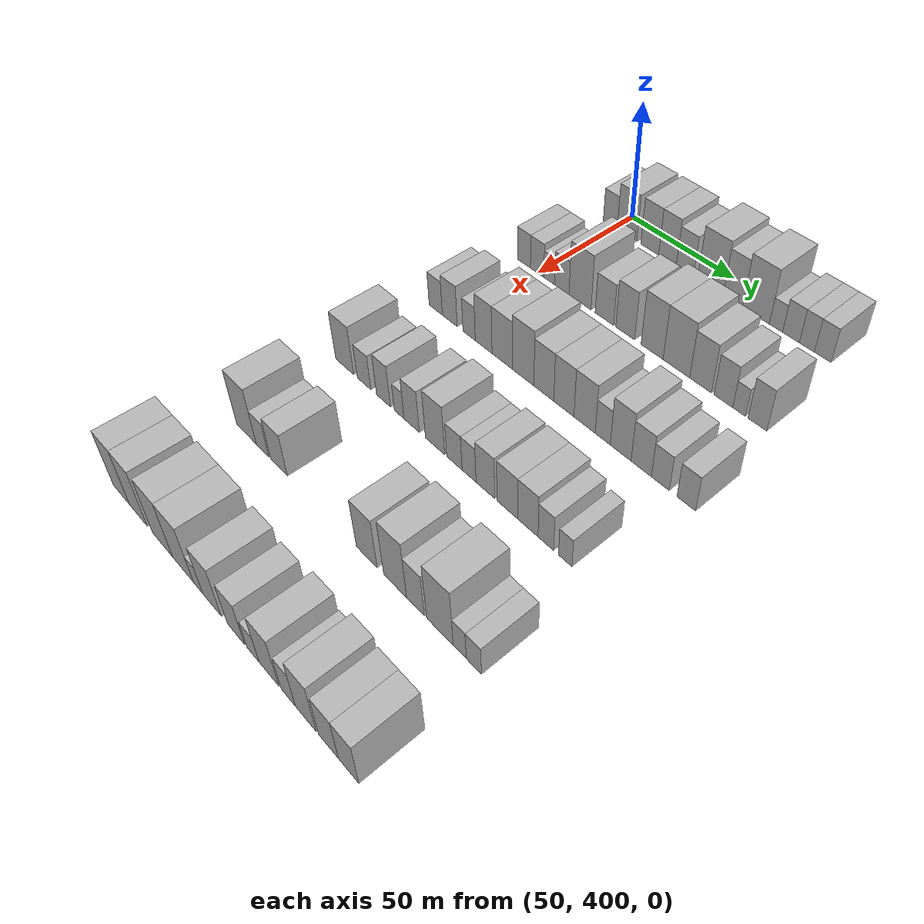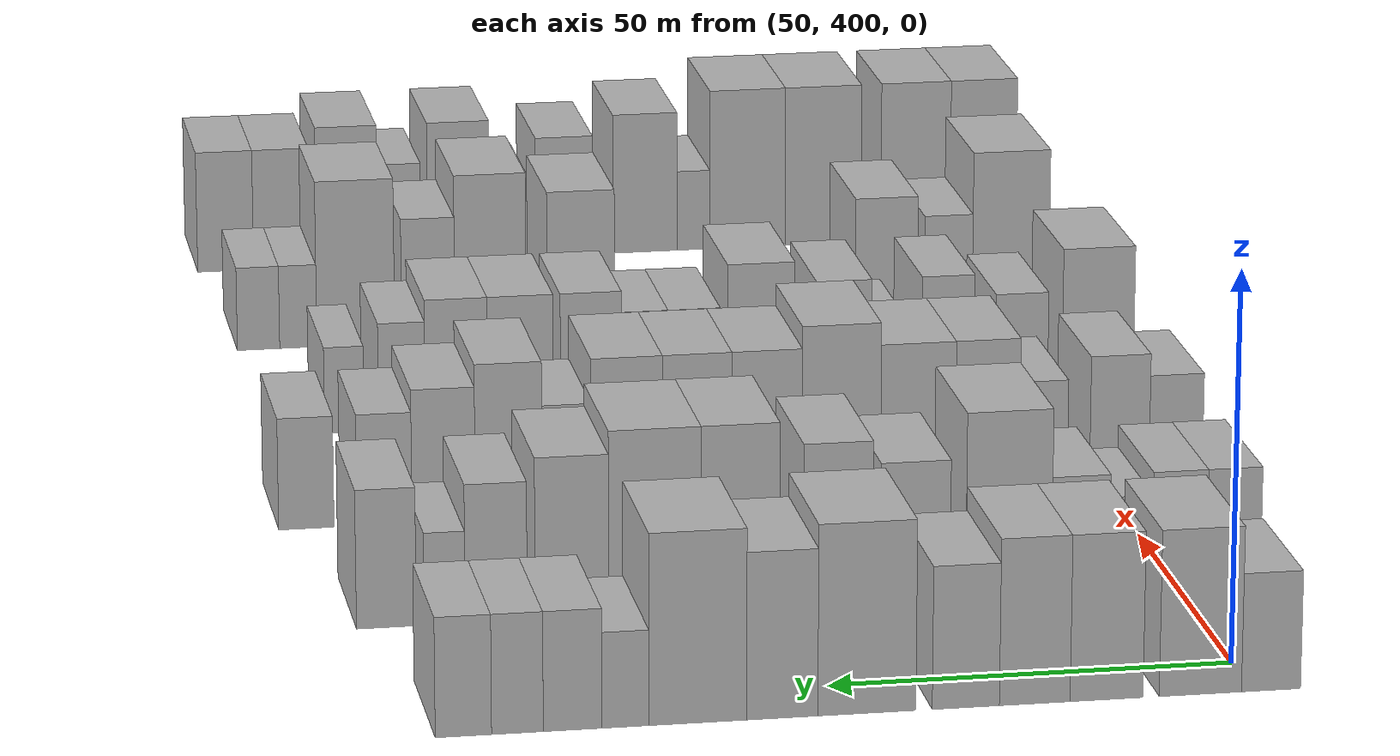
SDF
<sdf version="1.6">
 <world name="default">
  <model name="building_115">
   <static>1</static>
   <pose>50.0000 397.6281 0 0.000000 0.000000 0.000000</pose>
   <link name="link">
    <pose>0 0 7.50 0 0 0</pose>
    <collision name="collision"><geometry><box><size>20.0000 7.2996 15.0000</size></box></geometry></collision>
    <visual name="visual">
     <cast_shadows>0</cast_shadows>
     <geometry><box><size>20.0000 7.2996 15.0000</size></box></geometry>
     <material>
      <script>
       <uri>model://HANNAS_wall/materials/scripts</uri>
       <uri>model://HANNAS_wall/materials/textures</uri>
       <name>vrc/HANNAS_wall</name>
      </script>
     </material>
    </visual>
   </link>
  </model>
  <model name="building_116">
   <static>1</static>
   <pose>50.0000 406.3432 0 0.000000 0.000000 0.000000</pose>
   <link name="link">
    <pose>0 0 10.50 0 0 0</pose>
    <collision name="collision"><geometry><box><size>20.0000 10.1307 21.0000</size></box></geometry></collision>
    <visual name="visual">
     <cast_shadows>0</cast_shadows>
     <geometry><box><size>20.0000 10.1307 21.0000</size></box></geometry>
     <material>
      <script>
       <uri>model://HANNAS_wall/materials/scripts</uri>
       <uri>model://HANNAS_wall/materials/textures</uri>
       <name>vrc/HANNAS_wall</name>
      </script>
     </material>
    </visual>
   </link>
  </model>
  <model name="building_117">
   <static>1</static>
   <pose>50.0000 417.8792 0 0.000000 0.000000 0.000000</pose>
   <link name="link">
    <pose>0 0 10.50 0 0 0</pose>
    <collision name="collision"><geometry><box><size>20.0000 8.9412 21.0000</size></box></geometry></collision>
    <visual name="visual">
     <cast_shadows>0</cast_shadows>
     <geometry><box><size>20.0000 8.9412 21.0000</size></box></geometry>
     <material>
      <script>
       <uri>model://HANNAS_wall/materials/scripts</uri>
       <uri>model://HANNAS_wall/materials/textures</uri>
       <name>vrc/HANNAS_wall</name>
      </script>
     </material>
    </visual>
   </link>
  </model>
  <model name="building_118">
   <static>1</static>
   <pose>50.0000 426.6758 0 0.000000 0.000000 0.000000</pose>
   <link name="link">
    <pose>0 0 10.50 0 0 0</pose>
    <collision name="collision"><geometry><box><size>20.0000 8.6520 21.0000</size></box></geometry></collision>
    <visual name="visual">
     <cast_shadows>0</cast_shadows>
     <geometry><box><size>20.0000 8.6520 21.0000</size></box></geometry>
     <material>
      <script>
       <uri>model://HANNAS_wall/materials/scripts</uri>
       <uri>model://HANNAS_wall/materials/textures</uri>
       <name>vrc/HANNAS_wall</name>
      </script>
     </material>
    </visual>
   </link>
  </model>
  <model name="building_119">
   <static>1</static>
   <pose>50.0000 435.0925 0 0.000000 0.000000 0.000000</pose>
   <link name="link">
    <pose>0 0 9.00 0 0 0</pose>
    <collision name="collision"><geometry><box><size>20.0000 8.1815 18.0000</size></box></geometry></collision>
    <visual name="visual">
     <cast_shadows>0</cast_shadows>
     <geometry><box><size>20.0000 8.1815 18.0000</size></box></geometry>
     <material>
      <script>
       <uri>model://HANNAS_wall/materials/scripts</uri>
       <uri>model://HANNAS_wall/materials/textures</uri>
       <name>vrc/HANNAS_wall</name>
      </script>
     </material>
    </visual>
   </link>
  </model>
  <model name="building_120">
   <static>1</static>
   <pose>50.0000 447.1263 0 0.000000 0.000000 0.000000</pose>
   <link name="link">
    <pose>0 0 12.00 0 0 0</pose>
    <collision name="collision"><geometry><box><size>20.0000 11.8861 24.0000</size></box></geometry></collision>
    <visual name="visual">
     <cast_shadows>0</cast_shadows>
     <geometry><box><size>20.0000 11.8861 24.0000</size></box></geometry>
     <material>
      <script>
       <uri>model://HANNAS_wall/materials/scripts</uri>
       <uri>model://HANNAS_wall/materials/textures</uri>
       <name>vrc/HANNAS_wall</name>
      </script>
     </material>
    </visual>
   </link>
  </model>
  <model name="building_121">
   <static>1</static>
   <pose>50.0000 457.3688 0 0.000000 0.000000 0.000000</pose>
   <link name="link">
    <pose>0 0 10.50 0 0 0</pose>
    <collision name="collision"><geometry><box><size>20.0000 8.5988 21.0000</size></box></geometry></collision>
    <visual name="visual">
     <cast_shadows>0</cast_shadows>
     <geometry><box><size>20.0000 8.5988 21.0000</size></box></geometry>
     <material>
      <script>
       <uri>model://HANNAS_wall/materials/scripts</uri>
       <uri>model://HANNAS_wall/materials/textures</uri>
       <name>vrc/HANNAS_wall</name>
      </script>
     </material>
    </visual>
   </link>
  </model>
  <model name="building_122">
   <static>1</static>
   <pose>50.0000 467.5502 0 0.000000 0.000000 0.000000</pose>
   <link name="link">
    <pose>0 0 12.00 0 0 0</pose>
    <collision name="collision"><geometry><box><size>20.0000 11.7640 24.0000</size></box></geometry></collision>
    <visual name="visual">
     <cast_shadows>0</cast_shadows>
     <geometry><box><size>20.0000 11.7640 24.0000</size></box></geometry>
     <material>
      <script>
       <uri>model://HANNAS_wall/materials/scripts</uri>
       <uri>model://HANNAS_wall/materials/textures</uri>
       <name>vrc/HANNAS_wall</name>
      </script>
     </material>
    </visual>
   </link>
  </model>
  <model name="building_123">
   <static>1</static>
   <pose>50.0000 476.2482 0 0.000000 0.000000 0.000000</pose>
   <link name="link">
    <pose>0 0 6.00 0 0 0</pose>
    <collision name="collision"><geometry><box><size>20.0000 5.6320 12.0000</size></box></geometry></collision>
    <visual name="visual">
     <cast_shadows>0</cast_shadows>
     <geometry><box><size>20.0000 5.6320 12.0000</size></box></geometry>
     <material>
      <script>
       <uri>model://HANNAS_wall/materials/scripts</uri>
       <uri>model://HANNAS_wall/materials/textures</uri>
       <name>vrc/HANNAS_wall</name>
      </script>
     </material>
    </visual>
   </link>
  </model>
  <model name="building_124">
   <static>1</static>
   <pose>50.0000 482.5746 0 0.000000 0.000000 0.000000</pose>
   <link name="link">
    <pose>0 0 7.50 0 0 0</pose>
    <collision name="collision"><geometry><box><size>20.0000 7.0209 15.0000</size></box></geometry></collision>
    <visual name="visual">
     <cast_shadows>0</cast_shadows>
     <geometry><box><size>20.0000 7.0209 15.0000</size></box></geometry>
     <material>
      <script>
       <uri>model://HANNAS_wall/materials/scripts</uri>
       <uri>model://HANNAS_wall/materials/textures</uri>
       <name>vrc/HANNAS_wall</name>
      </script>
     </material>
    </visual>
   </link>
  </model>
  <model name="building_125">
   <static>1</static>
   <pose>50.0000 489.1726 0 0.000000 0.000000 0.000000</pose>
   <link name="link">
    <pose>0 0 7.50 0 0 0</pose>
    <collision name="collision"><geometry><box><size>20.0000 6.1750 15.0000</size></box></geometry></collision>
    <visual name="visual">
     <cast_shadows>0</cast_shadows>
     <geometry><box><size>20.0000 6.1750 15.0000</size></box></geometry>
     <material>
      <script>
       <uri>model://HANNAS_wall/materials/scripts</uri>
       <uri>model://HANNAS_wall/materials/textures</uri>
       <name>vrc/HANNAS_wall</name>
      </script>
     </material>
    </visual>
   </link>
  </model>
  <model name="building_126">
   <static>1</static>
   <pose>50.0000 495.6147 0 0.000000 0.000000 0.000000</pose>
   <link name="link">
    <pose>0 0 7.50 0 0 0</pose>
    <collision name="collision"><geometry><box><size>20.0000 6.7092 15.0000</size></box></geometry></collision>
    <visual name="visual">
     <cast_shadows>0</cast_shadows>
     <geometry><box><size>20.0000 6.7092 15.0000</size></box></geometry>
     <material>
      <script>
       <uri>model://HANNAS_wall/materials/scripts</uri>
       <uri>model://HANNAS_wall/materials/textures</uri>
       <name>vrc/HANNAS_wall</name>
      </script>
     </material>
    </visual>
   </link>
  </model>
  <model name="building_245">
   <static>1</static>
   <pose>90.0000 392.4296 0 0.000000 0.000000 0.000000</pose>
   <link name="link">
    <pose>0 0 7.50 0 0 0</pose>
    <collision name="collision"><geometry><box><size>20.0000 6.9633 15.0000</size></box></geometry></collision>
    <visual name="visual">
     <cast_shadows>0</cast_shadows>
     <geometry><box><size>20.0000 6.9633 15.0000</size></box></geometry>
     <material>
      <script>
       <uri>model://HANNAS_wall/materials/scripts</uri>
       <uri>model://HANNAS_wall/materials/textures</uri>
       <name>vrc/HANNAS_wall</name>
      </script>
     </material>
    </visual>
   </link>
  </model>
  <model name="building_246">
   <static>1</static>
   <pose>90.0000 399.4399 0 0.000000 0.000000 0.000000</pose>
   <link name="link">
    <pose>0 0 7.50 0 0 0</pose>
    <collision name="collision"><geometry><box><size>20.0000 7.0574 15.0000</size></box></geometry></collision>
    <visual name="visual">
     <cast_shadows>0</cast_shadows>
     <geometry><box><size>20.0000 7.0574 15.0000</size></box></geometry>
     <material>
      <script>
       <uri>model://HANNAS_wall/materials/scripts</uri>
       <uri>model://HANNAS_wall/materials/textures</uri>
       <name>vrc/HANNAS_wall</name>
      </script>
     </material>
    </visual>
   </link>
  </model>
  <model name="building_247">
   <static>1</static>
   <pose>90.0000 405.7110 0 0.000000 0.000000 0.000000</pose>
   <link name="link">
    <pose>0 0 6.00 0 0 0</pose>
    <collision name="collision"><geometry><box><size>20.0000 5.4847 12.0000</size></box></geometry></collision>
    <visual name="visual">
     <cast_shadows>0</cast_shadows>
     <geometry><box><size>20.0000 5.4847 12.0000</size></box></geometry>
     <material>
      <script>
       <uri>model://HANNAS_wall/materials/scripts</uri>
       <uri>model://HANNAS_wall/materials/textures</uri>
       <name>vrc/HANNAS_wall</name>
      </script>
     </material>
    </visual>
   </link>
  </model>
  <model name="building_248">
   <static>1</static>
   <pose>90.0000 412.1818 0 0.000000 0.000000 0.000000</pose>
   <link name="link">
    <pose>0 0 7.50 0 0 0</pose>
    <collision name="collision"><geometry><box><size>20.0000 7.4568 15.0000</size></box></geometry></collision>
    <visual name="visual">
     <cast_shadows>0</cast_shadows>
     <geometry><box><size>20.0000 7.4568 15.0000</size></box></geometry>
     <material>
      <script>
       <uri>model://HANNAS_wall/materials/scripts</uri>
       <uri>model://HANNAS_wall/materials/textures</uri>
       <name>vrc/HANNAS_wall</name>
      </script>
     </material>
    </visual>
   </link>
  </model>
  <model name="building_249">
   <static>1</static>
   <pose>90.0000 421.3964 0 0.000000 0.000000 0.000000</pose>
   <link name="link">
    <pose>0 0 12.00 0 0 0</pose>
    <collision name="collision"><geometry><box><size>20.0000 10.9725 24.0000</size></box></geometry></collision>
    <visual name="visual">
     <cast_shadows>0</cast_shadows>
     <geometry><box><size>20.0000 10.9725 24.0000</size></box></geometry>
     <material>
      <script>
       <uri>model://HANNAS_wall/materials/scripts</uri>
       <uri>model://HANNAS_wall/materials/textures</uri>
       <name>vrc/HANNAS_wall</name>
      </script>
     </material>
    </visual>
   </link>
  </model>
  <model name="building_250">
   <static>1</static>
   <pose>90.0000 433.3153 0 0.000000 0.000000 0.000000</pose>
   <link name="link">
    <pose>0 0 9.00 0 0 0</pose>
    <collision name="collision"><geometry><box><size>20.0000 8.8652 18.0000</size></box></geometry></collision>
    <visual name="visual">
     <cast_shadows>0</cast_shadows>
     <geometry><box><size>20.0000 8.8652 18.0000</size></box></geometry>
     <material>
      <script>
       <uri>model://HANNAS_wall/materials/scripts</uri>
       <uri>model://HANNAS_wall/materials/textures</uri>
       <name>vrc/HANNAS_wall</name>
      </script>
     </material>
    </visual>
   </link>
  </model>
  <model name="building_251">
   <static>1</static>
   <pose>90.0000 443.1510 0 0.000000 0.000000 0.000000</pose>
   <link name="link">
    <pose>0 0 10.50 0 0 0</pose>
    <collision name="collision"><geometry><box><size>20.0000 8.8062 21.0000</size></box></geometry></collision>
    <visual name="visual">
     <cast_shadows>0</cast_shadows>
     <geometry><box><size>20.0000 8.8062 21.0000</size></box></geometry>
     <material>
      <script>
       <uri>model://HANNAS_wall/materials/scripts</uri>
       <uri>model://HANNAS_wall/materials/textures</uri>
       <name>vrc/HANNAS_wall</name>
      </script>
     </material>
    </visual>
   </link>
  </model>
  <model name="building_252">
   <static>1</static>
   <pose>90.0000 455.5092 0 0.000000 0.000000 0.000000</pose>
   <link name="link">
    <pose>0 0 12.00 0 0 0</pose>
    <collision name="collision"><geometry><box><size>20.0000 9.9103 24.0000</size></box></geometry></collision>
    <visual name="visual">
     <cast_shadows>0</cast_shadows>
     <geometry><box><size>20.0000 9.9103 24.0000</size></box></geometry>
     <material>
      <script>
       <uri>model://HANNAS_wall/materials/scripts</uri>
       <uri>model://HANNAS_wall/materials/textures</uri>
       <name>vrc/HANNAS_wall</name>
      </script>
     </material>
    </visual>
   </link>
  </model>
  <model name="building_253">
   <static>1</static>
   <pose>90.0000 466.2756 0 0.000000 0.000000 0.000000</pose>
   <link name="link">
    <pose>0 0 12.00 0 0 0</pose>
    <collision name="collision"><geometry><box><size>20.0000 11.6225 24.0000</size></box></geometry></collision>
    <visual name="visual">
     <cast_shadows>0</cast_shadows>
     <geometry><box><size>20.0000 11.6225 24.0000</size></box></geometry>
     <material>
      <script>
       <uri>model://HANNAS_wall/materials/scripts</uri>
       <uri>model://HANNAS_wall/materials/textures</uri>
       <name>vrc/HANNAS_wall</name>
      </script>
     </material>
    </visual>
   </link>
  </model>
  <model name="building_254">
   <static>1</static>
   <pose>90.0000 476.6976 0 0.000000 0.000000 0.000000</pose>
   <link name="link">
    <pose>0 0 10.50 0 0 0</pose>
    <collision name="collision"><geometry><box><size>20.0000 9.2214 21.0000</size></box></geometry></collision>
    <visual name="visual">
     <cast_shadows>0</cast_shadows>
     <geometry><box><size>20.0000 9.2214 21.0000</size></box></geometry>
     <material>
      <script>
       <uri>model://HANNAS_wall/materials/scripts</uri>
       <uri>model://HANNAS_wall/materials/textures</uri>
       <name>vrc/HANNAS_wall</name>
      </script>
     </material>
    </visual>
   </link>
  </model>
  <model name="building_255">
   <static>1</static>
   <pose>90.0000 486.1868 0 0.000000 0.000000 0.000000</pose>
   <link name="link">
    <pose>0 0 9.00 0 0 0</pose>
    <collision name="collision"><geometry><box><size>20.0000 7.7570 18.0000</size></box></geometry></collision>
    <visual name="visual">
     <cast_shadows>0</cast_shadows>
     <geometry><box><size>20.0000 7.7570 18.0000</size></box></geometry>
     <material>
      <script>
       <uri>model://HANNAS_wall/materials/scripts</uri>
       <uri>model://HANNAS_wall/materials/textures</uri>
       <name>vrc/HANNAS_wall</name>
      </script>
     </material>
    </visual>
   </link>
  </model>
  <model name="building_256">
   <static>1</static>
   <pose>90.0000 492.6128 0 0.000000 0.000000 0.000000</pose>
   <link name="link">
    <pose>0 0 6.00 0 0 0</pose>
    <collision name="collision"><geometry><box><size>20.0000 5.0952 12.0000</size></box></geometry></collision>
    <visual name="visual">
     <cast_shadows>0</cast_shadows>
     <geometry><box><size>20.0000 5.0952 12.0000</size></box></geometry>
     <material>
      <script>
       <uri>model://HANNAS_wall/materials/scripts</uri>
       <uri>model://HANNAS_wall/materials/textures</uri>
       <name>vrc/HANNAS_wall</name>
      </script>
     </material>
    </visual>
   </link>
  </model>
  <model name="building_257">
   <static>1</static>
   <pose>90.0000 499.8841 0 0.000000 0.000000 0.000000</pose>
   <link name="link">
    <pose>0 0 9.00 0 0 0</pose>
    <collision name="collision"><geometry><box><size>20.0000 7.4475 18.0000</size></box></geometry></collision>
    <visual name="visual">
     <cast_shadows>0</cast_shadows>
     <geometry><box><size>20.0000 7.4475 18.0000</size></box></geometry>
     <material>
      <script>
       <uri>model://HANNAS_wall/materials/scripts</uri>
       <uri>model://HANNAS_wall/materials/textures</uri>
       <name>vrc/HANNAS_wall</name>
      </script>
     </material>
    </visual>
   </link>
  </model>
  <model name="building_393">
   <static>1</static>
   <pose>130.0000 390.4270 0 0.000000 0.000000 0.000000</pose>
   <link name="link">
    <pose>0 0 7.50 0 0 0</pose>
    <collision name="collision"><geometry><box><size>20.0000 7.2090 15.0000</size></box></geometry></collision>
    <visual name="visual">
     <cast_shadows>0</cast_shadows>
     <geometry><box><size>20.0000 7.2090 15.0000</size></box></geometry>
     <material>
      <script>
       <uri>model://HANNAS_wall/materials/scripts</uri>
       <uri>model://HANNAS_wall/materials/textures</uri>
       <name>vrc/HANNAS_wall</name>
      </script>
     </material>
    </visual>
   </link>
  </model>
  <model name="building_394">
   <static>1</static>
   <pose>130.0000 398.0259 0 0.000000 0.000000 0.000000</pose>
   <link name="link">
    <pose>0 0 9.00 0 0 0</pose>
    <collision name="collision"><geometry><box><size>20.0000 7.9886 18.0000</size></box></geometry></collision>
    <visual name="visual">
     <cast_shadows>0</cast_shadows>
     <geometry><box><size>20.0000 7.9886 18.0000</size></box></geometry>
     <material>
      <script>
       <uri>model://HANNAS_wall/materials/scripts</uri>
       <uri>model://HANNAS_wall/materials/textures</uri>
       <name>vrc/HANNAS_wall</name>
      </script>
     </material>
    </visual>
   </link>
  </model>
  <model name="building_395">
   <static>1</static>
   <pose>130.0000 408.2379 0 0.000000 0.000000 0.000000</pose>
   <link name="link">
    <pose>0 0 7.50 0 0 0</pose>
    <collision name="collision"><geometry><box><size>20.0000 6.4355 15.0000</size></box></geometry></collision>
    <visual name="visual">
     <cast_shadows>0</cast_shadows>
     <geometry><box><size>20.0000 6.4355 15.0000</size></box></geometry>
     <material>
      <script>
       <uri>model://HANNAS_wall/materials/scripts</uri>
       <uri>model://HANNAS_wall/materials/textures</uri>
       <name>vrc/HANNAS_wall</name>
      </script>
     </material>
    </visual>
   </link>
  </model>
  <model name="building_396">
   <static>1</static>
   <pose>130.0000 415.7455 0 0.000000 0.000000 0.000000</pose>
   <link name="link">
    <pose>0 0 10.50 0 0 0</pose>
    <collision name="collision"><geometry><box><size>20.0000 8.5798 21.0000</size></box></geometry></collision>
    <visual name="visual">
     <cast_shadows>0</cast_shadows>
     <geometry><box><size>20.0000 8.5798 21.0000</size></box></geometry>
     <material>
      <script>
       <uri>model://HANNAS_wall/materials/scripts</uri>
       <uri>model://HANNAS_wall/materials/textures</uri>
       <name>vrc/HANNAS_wall</name>
      </script>
     </material>
    </visual>
   </link>
  </model>
  <model name="building_397">
   <static>1</static>
   <pose>130.0000 425.0184 0 0.000000 0.000000 0.000000</pose>
   <link name="link">
    <pose>0 0 10.50 0 0 0</pose>
    <collision name="collision"><geometry><box><size>20.0000 9.9659 21.0000</size></box></geometry></collision>
    <visual name="visual">
     <cast_shadows>0</cast_shadows>
     <geometry><box><size>20.0000 9.9659 21.0000</size></box></geometry>
     <material>
      <script>
       <uri>model://HANNAS_wall/materials/scripts</uri>
       <uri>model://HANNAS_wall/materials/textures</uri>
       <name>vrc/HANNAS_wall</name>
      </script>
     </material>
    </visual>
   </link>
  </model>
  <model name="building_398">
   <static>1</static>
   <pose>130.0000 435.2147 0 0.000000 0.000000 0.000000</pose>
   <link name="link">
    <pose>0 0 12.00 0 0 0</pose>
    <collision name="collision"><geometry><box><size>20.0000 10.4267 24.0000</size></box></geometry></collision>
    <visual name="visual">
     <cast_shadows>0</cast_shadows>
     <geometry><box><size>20.0000 10.4267 24.0000</size></box></geometry>
     <material>
      <script>
       <uri>model://HANNAS_wall/materials/scripts</uri>
       <uri>model://HANNAS_wall/materials/textures</uri>
       <name>vrc/HANNAS_wall</name>
      </script>
     </material>
    </visual>
   </link>
  </model>
  <model name="building_399">
   <static>1</static>
   <pose>130.0000 445.0683 0 0.000000 0.000000 0.000000</pose>
   <link name="link">
    <pose>0 0 10.50 0 0 0</pose>
    <collision name="collision"><geometry><box><size>20.0000 9.2804 21.0000</size></box></geometry></collision>
    <visual name="visual">
     <cast_shadows>0</cast_shadows>
     <geometry><box><size>20.0000 9.2804 21.0000</size></box></geometry>
     <material>
      <script>
       <uri>model://HANNAS_wall/materials/scripts</uri>
       <uri>model://HANNAS_wall/materials/textures</uri>
       <name>vrc/HANNAS_wall</name>
      </script>
     </material>
    </visual>
   </link>
  </model>
  <model name="building_400">
   <static>1</static>
   <pose>130.0000 454.2772 0 0.000000 0.000000 0.000000</pose>
   <link name="link">
    <pose>0 0 10.50 0 0 0</pose>
    <collision name="collision"><geometry><box><size>20.0000 9.1374 21.0000</size></box></geometry></collision>
    <visual name="visual">
     <cast_shadows>0</cast_shadows>
     <geometry><box><size>20.0000 9.1374 21.0000</size></box></geometry>
     <material>
      <script>
       <uri>model://HANNAS_wall/materials/scripts</uri>
       <uri>model://HANNAS_wall/materials/textures</uri>
       <name>vrc/HANNAS_wall</name>
      </script>
     </material>
    </visual>
   </link>
  </model>
  <model name="building_401">
   <static>1</static>
   <pose>130.0000 463.5213 0 0.000000 0.000000 0.000000</pose>
   <link name="link">
    <pose>0 0 10.50 0 0 0</pose>
    <collision name="collision"><geometry><box><size>20.0000 9.3508 21.0000</size></box></geometry></collision>
    <visual name="visual">
     <cast_shadows>0</cast_shadows>
     <geometry><box><size>20.0000 9.3508 21.0000</size></box></geometry>
     <material>
      <script>
       <uri>model://HANNAS_wall/materials/scripts</uri>
       <uri>model://HANNAS_wall/materials/textures</uri>
       <name>vrc/HANNAS_wall</name>
      </script>
     </material>
    </visual>
   </link>
  </model>
  <model name="building_402">
   <static>1</static>
   <pose>130.0000 471.4297 0 0.000000 0.000000 0.000000</pose>
   <link name="link">
    <pose>0 0 7.50 0 0 0</pose>
    <collision name="collision"><geometry><box><size>20.0000 6.4660 15.0000</size></box></geometry></collision>
    <visual name="visual">
     <cast_shadows>0</cast_shadows>
     <geometry><box><size>20.0000 6.4660 15.0000</size></box></geometry>
     <material>
      <script>
       <uri>model://HANNAS_wall/materials/scripts</uri>
       <uri>model://HANNAS_wall/materials/textures</uri>
       <name>vrc/HANNAS_wall</name>
      </script>
     </material>
    </visual>
   </link>
  </model>
  <model name="building_403">
   <static>1</static>
   <pose>130.0000 479.0367 0 0.000000 0.000000 0.000000</pose>
   <link name="link">
    <pose>0 0 10.50 0 0 0</pose>
    <collision name="collision"><geometry><box><size>20.0000 8.7478 21.0000</size></box></geometry></collision>
    <visual name="visual">
     <cast_shadows>0</cast_shadows>
     <geometry><box><size>20.0000 8.7478 21.0000</size></box></geometry>
     <material>
      <script>
       <uri>model://HANNAS_wall/materials/scripts</uri>
       <uri>model://HANNAS_wall/materials/textures</uri>
       <name>vrc/HANNAS_wall</name>
      </script>
     </material>
    </visual>
   </link>
  </model>
  <model name="building_404">
   <static>1</static>
   <pose>130.0000 487.5412 0 0.000000 0.000000 0.000000</pose>
   <link name="link">
    <pose>0 0 9.00 0 0 0</pose>
    <collision name="collision"><geometry><box><size>20.0000 8.2613 18.0000</size></box></geometry></collision>
    <visual name="visual">
     <cast_shadows>0</cast_shadows>
     <geometry><box><size>20.0000 8.2613 18.0000</size></box></geometry>
     <material>
      <script>
       <uri>model://HANNAS_wall/materials/scripts</uri>
       <uri>model://HANNAS_wall/materials/textures</uri>
       <name>vrc/HANNAS_wall</name>
      </script>
     </material>
    </visual>
   </link>
  </model>
  <model name="building_405">
   <static>1</static>
   <pose>130.0000 495.2461 0 0.000000 0.000000 0.000000</pose>
   <link name="link">
    <pose>0 0 7.50 0 0 0</pose>
    <collision name="collision"><geometry><box><size>20.0000 7.1485 15.0000</size></box></geometry></collision>
    <visual name="visual">
     <cast_shadows>0</cast_shadows>
     <geometry><box><size>20.0000 7.1485 15.0000</size></box></geometry>
     <material>
      <script>
       <uri>model://HANNAS_wall/materials/scripts</uri>
       <uri>model://HANNAS_wall/materials/textures</uri>
       <name>vrc/HANNAS_wall</name>
      </script>
     </material>
    </visual>
   </link>
  </model>
  <model name="building_406">
   <static>1</static>
   <pose>130.0000 505.4075 0 0.000000 0.000000 0.000000</pose>
   <link name="link">
    <pose>0 0 7.50 0 0 0</pose>
    <collision name="collision"><geometry><box><size>20.0000 7.1742 15.0000</size></box></geometry></collision>
    <visual name="visual">
     <cast_shadows>0</cast_shadows>
     <geometry><box><size>20.0000 7.1742 15.0000</size></box></geometry>
     <material>
      <script>
       <uri>model://HANNAS_wall/materials/scripts</uri>
       <uri>model://HANNAS_wall/materials/textures</uri>
       <name>vrc/HANNAS_wall</name>
      </script>
     </material>
    </visual>
   </link>
  </model>
  <model name="building_525">
   <static>1</static>
   <pose>170.0000 391.9102 0 0.000000 0.000000 0.000000</pose>
   <link name="link">
    <pose>0 0 10.50 0 0 0</pose>
    <collision name="collision"><geometry><box><size>20.0000 10.0242 21.0000</size></box></geometry></collision>
    <visual name="visual">
     <cast_shadows>0</cast_shadows>
     <geometry><box><size>20.0000 10.0242 21.0000</size></box></geometry>
     <material>
      <script>
       <uri>model://HANNAS_wall/materials/scripts</uri>
       <uri>model://HANNAS_wall/materials/textures</uri>
       <name>vrc/HANNAS_wall</name>
      </script>
     </material>
    </visual>
   </link>
  </model>
  <model name="building_526">
   <static>1</static>
   <pose>170.0000 402.5797 0 0.000000 0.000000 0.000000</pose>
   <link name="link">
    <pose>0 0 7.50 0 0 0</pose>
    <collision name="collision"><geometry><box><size>20.0000 7.3149 15.0000</size></box></geometry></collision>
    <visual name="visual">
     <cast_shadows>0</cast_shadows>
     <geometry><box><size>20.0000 7.3149 15.0000</size></box></geometry>
     <material>
      <script>
       <uri>model://HANNAS_wall/materials/scripts</uri>
       <uri>model://HANNAS_wall/materials/textures</uri>
       <name>vrc/HANNAS_wall</name>
      </script>
     </material>
    </visual>
   </link>
  </model>
  <model name="building_527">
   <static>1</static>
   <pose>170.0000 412.8870 0 0.000000 0.000000 0.000000</pose>
   <link name="link">
    <pose>0 0 9.00 0 0 0</pose>
    <collision name="collision"><geometry><box><size>20.0000 7.2997 18.0000</size></box></geometry></collision>
    <visual name="visual">
     <cast_shadows>0</cast_shadows>
     <geometry><box><size>20.0000 7.2997 18.0000</size></box></geometry>
     <material>
      <script>
       <uri>model://HANNAS_wall/materials/scripts</uri>
       <uri>model://HANNAS_wall/materials/textures</uri>
       <name>vrc/HANNAS_wall</name>
      </script>
     </material>
    </visual>
   </link>
  </model>
  <model name="building_528">
   <static>1</static>
   <pose>170.0000 421.0339 0 0.000000 0.000000 0.000000</pose>
   <link name="link">
    <pose>0 0 6.00 0 0 0</pose>
    <collision name="collision"><geometry><box><size>20.0000 4.9941 12.0000</size></box></geometry></collision>
    <visual name="visual">
     <cast_shadows>0</cast_shadows>
     <geometry><box><size>20.0000 4.9941 12.0000</size></box></geometry>
     <material>
      <script>
       <uri>model://HANNAS_wall/materials/scripts</uri>
       <uri>model://HANNAS_wall/materials/textures</uri>
       <name>vrc/HANNAS_wall</name>
      </script>
     </material>
    </visual>
   </link>
  </model>
  <model name="building_529">
   <static>1</static>
   <pose>170.0000 427.3451 0 0.000000 0.000000 0.000000</pose>
   <link name="link">
    <pose>0 0 9.00 0 0 0</pose>
    <collision name="collision"><geometry><box><size>20.0000 7.6284 18.0000</size></box></geometry></collision>
    <visual name="visual">
     <cast_shadows>0</cast_shadows>
     <geometry><box><size>20.0000 7.6284 18.0000</size></box></geometry>
     <material>
      <script>
       <uri>model://HANNAS_wall/materials/scripts</uri>
       <uri>model://HANNAS_wall/materials/textures</uri>
       <name>vrc/HANNAS_wall</name>
      </script>
     </material>
    </visual>
   </link>
  </model>
  <model name="building_530">
   <static>1</static>
   <pose>170.0000 438.7928 0 0.000000 0.000000 0.000000</pose>
   <link name="link">
    <pose>0 0 10.50 0 0 0</pose>
    <collision name="collision"><geometry><box><size>20.0000 9.2670 21.0000</size></box></geometry></collision>
    <visual name="visual">
     <cast_shadows>0</cast_shadows>
     <geometry><box><size>20.0000 9.2670 21.0000</size></box></geometry>
     <material>
      <script>
       <uri>model://HANNAS_wall/materials/scripts</uri>
       <uri>model://HANNAS_wall/materials/textures</uri>
       <name>vrc/HANNAS_wall</name>
      </script>
     </material>
    </visual>
   </link>
  </model>
  <model name="building_531">
   <static>1</static>
   <pose>170.0000 448.0102 0 0.000000 0.000000 0.000000</pose>
   <link name="link">
    <pose>0 0 7.50 0 0 0</pose>
    <collision name="collision"><geometry><box><size>20.0000 7.1679 15.0000</size></box></geometry></collision>
    <visual name="visual">
     <cast_shadows>0</cast_shadows>
     <geometry><box><size>20.0000 7.1679 15.0000</size></box></geometry>
     <material>
      <script>
       <uri>model://HANNAS_wall/materials/scripts</uri>
       <uri>model://HANNAS_wall/materials/textures</uri>
       <name>vrc/HANNAS_wall</name>
      </script>
     </material>
    </visual>
   </link>
  </model>
  <model name="building_532">
   <static>1</static>
   <pose>170.0000 454.7971 0 0.000000 0.000000 0.000000</pose>
   <link name="link">
    <pose>0 0 7.50 0 0 0</pose>
    <collision name="collision"><geometry><box><size>20.0000 6.4059 15.0000</size></box></geometry></collision>
    <visual name="visual">
     <cast_shadows>0</cast_shadows>
     <geometry><box><size>20.0000 6.4059 15.0000</size></box></geometry>
     <material>
      <script>
       <uri>model://HANNAS_wall/materials/scripts</uri>
       <uri>model://HANNAS_wall/materials/textures</uri>
       <name>vrc/HANNAS_wall</name>
      </script>
     </material>
    </visual>
   </link>
  </model>
  <model name="building_533">
   <static>1</static>
   <pose>170.0000 462.1796 0 0.000000 0.000000 0.000000</pose>
   <link name="link">
    <pose>0 0 9.00 0 0 0</pose>
    <collision name="collision"><geometry><box><size>20.0000 8.3591 18.0000</size></box></geometry></collision>
    <visual name="visual">
     <cast_shadows>0</cast_shadows>
     <geometry><box><size>20.0000 8.3591 18.0000</size></box></geometry>
     <material>
      <script>
       <uri>model://HANNAS_wall/materials/scripts</uri>
       <uri>model://HANNAS_wall/materials/textures</uri>
       <name>vrc/HANNAS_wall</name>
      </script>
     </material>
    </visual>
   </link>
  </model>
  <model name="building_534">
   <static>1</static>
   <pose>170.0000 471.8371 0 0.000000 0.000000 0.000000</pose>
   <link name="link">
    <pose>0 0 9.00 0 0 0</pose>
    <collision name="collision"><geometry><box><size>20.0000 8.9557 18.0000</size></box></geometry></collision>
    <visual name="visual">
     <cast_shadows>0</cast_shadows>
     <geometry><box><size>20.0000 8.9557 18.0000</size></box></geometry>
     <material>
      <script>
       <uri>model://HANNAS_wall/materials/scripts</uri>
       <uri>model://HANNAS_wall/materials/textures</uri>
       <name>vrc/HANNAS_wall</name>
      </script>
     </material>
    </visual>
   </link>
  </model>
  <model name="building_535">
   <static>1</static>
   <pose>170.0000 480.5683 0 0.000000 0.000000 0.000000</pose>
   <link name="link">
    <pose>0 0 9.00 0 0 0</pose>
    <collision name="collision"><geometry><box><size>20.0000 8.5067 18.0000</size></box></geometry></collision>
    <visual name="visual">
     <cast_shadows>0</cast_shadows>
     <geometry><box><size>20.0000 8.5067 18.0000</size></box></geometry>
     <material>
      <script>
       <uri>model://HANNAS_wall/materials/scripts</uri>
       <uri>model://HANNAS_wall/materials/textures</uri>
       <name>vrc/HANNAS_wall</name>
      </script>
     </material>
    </visual>
   </link>
  </model>
  <model name="building_536">
   <static>1</static>
   <pose>170.0000 487.9976 0 0.000000 0.000000 0.000000</pose>
   <link name="link">
    <pose>0 0 7.50 0 0 0</pose>
    <collision name="collision"><geometry><box><size>20.0000 6.3520 15.0000</size></box></geometry></collision>
    <visual name="visual">
     <cast_shadows>0</cast_shadows>
     <geometry><box><size>20.0000 6.3520 15.0000</size></box></geometry>
     <material>
      <script>
       <uri>model://HANNAS_wall/materials/scripts</uri>
       <uri>model://HANNAS_wall/materials/textures</uri>
       <name>vrc/HANNAS_wall</name>
      </script>
     </material>
    </visual>
   </link>
  </model>
  <model name="building_537">
   <static>1</static>
   <pose>170.0000 495.8460 0 0.000000 0.000000 0.000000</pose>
   <link name="link">
    <pose>0 0 6.00 0 0 0</pose>
    <collision name="collision"><geometry><box><size>20.0000 5.3448 12.0000</size></box></geometry></collision>
    <visual name="visual">
     <cast_shadows>0</cast_shadows>
     <geometry><box><size>20.0000 5.3448 12.0000</size></box></geometry>
     <material>
      <script>
       <uri>model://HANNAS_wall/materials/scripts</uri>
       <uri>model://HANNAS_wall/materials/textures</uri>
       <name>vrc/HANNAS_wall</name>
      </script>
     </material>
    </visual>
   </link>
  </model>
  <model name="building_658">
   <static>1</static>
   <pose>210.0000 395.6024 0 0.000000 0.000000 0.000000</pose>
   <link name="link">
    <pose>0 0 12.00 0 0 0</pose>
    <collision name="collision"><geometry><box><size>20.0000 11.1367 24.0000</size></box></geometry></collision>
    <visual name="visual">
     <cast_shadows>0</cast_shadows>
     <geometry><box><size>20.0000 11.1367 24.0000</size></box></geometry>
     <material>
      <script>
       <uri>model://HANNAS_wall/materials/scripts</uri>
       <uri>model://HANNAS_wall/materials/textures</uri>
       <name>vrc/HANNAS_wall</name>
      </script>
     </material>
    </visual>
   </link>
  </model>
  <model name="building_659">
   <static>1</static>
   <pose>210.0000 404.6587 0 0.000000 0.000000 0.000000</pose>
   <link name="link">
    <pose>0 0 7.50 0 0 0</pose>
    <collision name="collision"><geometry><box><size>20.0000 6.9757 15.0000</size></box></geometry></collision>
    <visual name="visual">
     <cast_shadows>0</cast_shadows>
     <geometry><box><size>20.0000 6.9757 15.0000</size></box></geometry>
     <material>
      <script>
       <uri>model://HANNAS_wall/materials/scripts</uri>
       <uri>model://HANNAS_wall/materials/textures</uri>
       <name>vrc/HANNAS_wall</name>
      </script>
     </material>
    </visual>
   </link>
  </model>
  <model name="building_660">
   <static>1</static>
   <pose>210.0000 413.6453 0 0.000000 0.000000 0.000000</pose>
   <link name="link">
    <pose>0 0 9.00 0 0 0</pose>
    <collision name="collision"><geometry><box><size>20.0000 8.9976 18.0000</size></box></geometry></collision>
    <visual name="visual">
     <cast_shadows>0</cast_shadows>
     <geometry><box><size>20.0000 8.9976 18.0000</size></box></geometry>
     <material>
      <script>
       <uri>model://HANNAS_wall/materials/scripts</uri>
       <uri>model://HANNAS_wall/materials/textures</uri>
       <name>vrc/HANNAS_wall</name>
      </script>
     </material>
    </visual>
   </link>
  </model>
  <model name="building_661">
   <static>1</static>
   <pose>210.0000 457.5826 0 0.000000 0.000000 0.000000</pose>
   <link name="link">
    <pose>0 0 10.50 0 0 0</pose>
    <collision name="collision"><geometry><box><size>20.0000 9.6257 21.0000</size></box></geometry></collision>
    <visual name="visual">
     <cast_shadows>0</cast_shadows>
     <geometry><box><size>20.0000 9.6257 21.0000</size></box></geometry>
     <material>
      <script>
       <uri>model://HANNAS_wall/materials/scripts</uri>
       <uri>model://HANNAS_wall/materials/textures</uri>
       <name>vrc/HANNAS_wall</name>
      </script>
     </material>
    </visual>
   </link>
  </model>
  <model name="building_662">
   <static>1</static>
   <pose>210.0000 470.4637 0 0.000000 0.000000 0.000000</pose>
   <link name="link">
    <pose>0 0 12.00 0 0 0</pose>
    <collision name="collision"><geometry><box><size>20.0000 10.1366 24.0000</size></box></geometry></collision>
    <visual name="visual">
     <cast_shadows>0</cast_shadows>
     <geometry><box><size>20.0000 10.1366 24.0000</size></box></geometry>
     <material>
      <script>
       <uri>model://HANNAS_wall/materials/scripts</uri>
       <uri>model://HANNAS_wall/materials/textures</uri>
       <name>vrc/HANNAS_wall</name>
      </script>
     </material>
    </visual>
   </link>
  </model>
  <model name="building_663">
   <static>1</static>
   <pose>210.0000 479.3022 0 0.000000 0.000000 0.000000</pose>
   <link name="link">
    <pose>0 0 9.00 0 0 0</pose>
    <collision name="collision"><geometry><box><size>20.0000 7.5402 18.0000</size></box></geometry></collision>
    <visual name="visual">
     <cast_shadows>0</cast_shadows>
     <geometry><box><size>20.0000 7.5402 18.0000</size></box></geometry>
     <material>
      <script>
       <uri>model://HANNAS_wall/materials/scripts</uri>
       <uri>model://HANNAS_wall/materials/textures</uri>
       <name>vrc/HANNAS_wall</name>
      </script>
     </material>
    </visual>
   </link>
  </model>
  <model name="building_664">
   <static>1</static>
   <pose>210.0000 489.5818 0 0.000000 0.000000 0.000000</pose>
   <link name="link">
    <pose>0 0 12.00 0 0 0</pose>
    <collision name="collision"><geometry><box><size>20.0000 11.0190 24.0000</size></box></geometry></collision>
    <visual name="visual">
     <cast_shadows>0</cast_shadows>
     <geometry><box><size>20.0000 11.0190 24.0000</size></box></geometry>
     <material>
      <script>
       <uri>model://HANNAS_wall/materials/scripts</uri>
       <uri>model://HANNAS_wall/materials/textures</uri>
       <name>vrc/HANNAS_wall</name>
      </script>
     </material>
    </visual>
   </link>
  </model>
  <model name="building_665">
   <static>1</static>
   <pose>210.0000 497.7181 0 0.000000 0.000000 0.000000</pose>
   <link name="link">
    <pose>0 0 6.00 0 0 0</pose>
    <collision name="collision"><geometry><box><size>20.0000 5.2537 12.0000</size></box></geometry></collision>
    <visual name="visual">
     <cast_shadows>0</cast_shadows>
     <geometry><box><size>20.0000 5.2537 12.0000</size></box></geometry>
     <material>
      <script>
       <uri>model://HANNAS_wall/materials/scripts</uri>
       <uri>model://HANNAS_wall/materials/textures</uri>
       <name>vrc/HANNAS_wall</name>
      </script>
     </material>
    </visual>
   </link>
  </model>
  <model name="building_666">
   <static>1</static>
   <pose>210.0000 503.3234 0 0.000000 0.000000 0.000000</pose>
   <link name="link">
    <pose>0 0 6.00 0 0 0</pose>
    <collision name="collision"><geometry><box><size>20.0000 5.9569 12.0000</size></box></geometry></collision>
    <visual name="visual">
     <cast_shadows>0</cast_shadows>
     <geometry><box><size>20.0000 5.9569 12.0000</size></box></geometry>
     <material>
      <script>
       <uri>model://HANNAS_wall/materials/scripts</uri>
       <uri>model://HANNAS_wall/materials/textures</uri>
       <name>vrc/HANNAS_wall</name>
      </script>
     </material>
    </visual>
   </link>
  </model>
  <model name="building_790">
   <static>1</static>
   <pose>250.0000 391.2602 0 0.000000 0.000000 0.000000</pose>
   <link name="link">
    <pose>0 0 12.00 0 0 0</pose>
    <collision name="collision"><geometry><box><size>20.0000 9.9812 24.0000</size></box></geometry></collision>
    <visual name="visual">
     <cast_shadows>0</cast_shadows>
     <geometry><box><size>20.0000 9.9812 24.0000</size></box></geometry>
     <material>
      <script>
       <uri>model://HANNAS_wall/materials/scripts</uri>
       <uri>model://HANNAS_wall/materials/textures</uri>
       <name>vrc/HANNAS_wall</name>
      </script>
     </material>
    </visual>
   </link>
  </model>
  <model name="building_791">
   <static>1</static>
   <pose>250.0000 401.4774 0 0.000000 0.000000 0.000000</pose>
   <link name="link">
    <pose>0 0 12.00 0 0 0</pose>
    <collision name="collision"><geometry><box><size>20.0000 10.4531 24.0000</size></box></geometry></collision>
    <visual name="visual">
     <cast_shadows>0</cast_shadows>
     <geometry><box><size>20.0000 10.4531 24.0000</size></box></geometry>
     <material>
      <script>
       <uri>model://HANNAS_wall/materials/scripts</uri>
       <uri>model://HANNAS_wall/materials/textures</uri>
       <name>vrc/HANNAS_wall</name>
      </script>
     </material>
    </visual>
   </link>
  </model>
  <model name="building_792">
   <static>1</static>
   <pose>250.0000 415.4007 0 0.000000 0.000000 0.000000</pose>
   <link name="link">
    <pose>0 0 12.00 0 0 0</pose>
    <collision name="collision"><geometry><box><size>20.0000 11.3936 24.0000</size></box></geometry></collision>
    <visual name="visual">
     <cast_shadows>0</cast_shadows>
     <geometry><box><size>20.0000 11.3936 24.0000</size></box></geometry>
     <material>
      <script>
       <uri>model://HANNAS_wall/materials/scripts</uri>
       <uri>model://HANNAS_wall/materials/textures</uri>
       <name>vrc/HANNAS_wall</name>
      </script>
     </material>
    </visual>
   </link>
  </model>
  <model name="building_793">
   <static>1</static>
   <pose>250.0000 426.7274 0 0.000000 0.000000 0.000000</pose>
   <link name="link">
    <pose>0 0 12.00 0 0 0</pose>
    <collision name="collision"><geometry><box><size>20.0000 11.2597 24.0000</size></box></geometry></collision>
    <visual name="visual">
     <cast_shadows>0</cast_shadows>
     <geometry><box><size>20.0000 11.2597 24.0000</size></box></geometry>
     <material>
      <script>
       <uri>model://HANNAS_wall/materials/scripts</uri>
       <uri>model://HANNAS_wall/materials/textures</uri>
       <name>vrc/HANNAS_wall</name>
      </script>
     </material>
    </visual>
   </link>
  </model>
  <model name="building_794">
   <static>1</static>
   <pose>250.0000 434.8163 0 0.000000 0.000000 0.000000</pose>
   <link name="link">
    <pose>0 0 6.00 0 0 0</pose>
    <collision name="collision"><geometry><box><size>20.0000 4.9182 12.0000</size></box></geometry></collision>
    <visual name="visual">
     <cast_shadows>0</cast_shadows>
     <geometry><box><size>20.0000 4.9182 12.0000</size></box></geometry>
     <material>
      <script>
       <uri>model://HANNAS_wall/materials/scripts</uri>
       <uri>model://HANNAS_wall/materials/textures</uri>
       <name>vrc/HANNAS_wall</name>
      </script>
     </material>
    </visual>
   </link>
  </model>
  <model name="building_795">
   <static>1</static>
   <pose>250.0000 442.0475 0 0.000000 0.000000 0.000000</pose>
   <link name="link">
    <pose>0 0 10.50 0 0 0</pose>
    <collision name="collision"><geometry><box><size>20.0000 9.5441 21.0000</size></box></geometry></collision>
    <visual name="visual">
     <cast_shadows>0</cast_shadows>
     <geometry><box><size>20.0000 9.5441 21.0000</size></box></geometry>
     <material>
      <script>
       <uri>model://HANNAS_wall/materials/scripts</uri>
       <uri>model://HANNAS_wall/materials/textures</uri>
       <name>vrc/HANNAS_wall</name>
      </script>
     </material>
    </visual>
   </link>
  </model>
  <model name="building_796">
   <static>1</static>
   <pose>250.0000 454.0498 0 0.000000 0.000000 0.000000</pose>
   <link name="link">
    <pose>0 0 9.00 0 0 0</pose>
    <collision name="collision"><geometry><box><size>20.0000 8.4604 18.0000</size></box></geometry></collision>
    <visual name="visual">
     <cast_shadows>0</cast_shadows>
     <geometry><box><size>20.0000 8.4604 18.0000</size></box></geometry>
     <material>
      <script>
       <uri>model://HANNAS_wall/materials/scripts</uri>
       <uri>model://HANNAS_wall/materials/textures</uri>
       <name>vrc/HANNAS_wall</name>
      </script>
     </material>
    </visual>
   </link>
  </model>
  <model name="building_797">
   <static>1</static>
   <pose>250.0000 462.2144 0 0.000000 0.000000 0.000000</pose>
   <link name="link">
    <pose>0 0 6.00 0 0 0</pose>
    <collision name="collision"><geometry><box><size>20.0000 5.8688 12.0000</size></box></geometry></collision>
    <visual name="visual">
     <cast_shadows>0</cast_shadows>
     <geometry><box><size>20.0000 5.8688 12.0000</size></box></geometry>
     <material>
      <script>
       <uri>model://HANNAS_wall/materials/scripts</uri>
       <uri>model://HANNAS_wall/materials/textures</uri>
       <name>vrc/HANNAS_wall</name>
      </script>
     </material>
    </visual>
   </link>
  </model>
  <model name="building_798">
   <static>1</static>
   <pose>250.0000 469.7042 0 0.000000 0.000000 0.000000</pose>
   <link name="link">
    <pose>0 0 10.50 0 0 0</pose>
    <collision name="collision"><geometry><box><size>20.0000 9.1108 21.0000</size></box></geometry></collision>
    <visual name="visual">
     <cast_shadows>0</cast_shadows>
     <geometry><box><size>20.0000 9.1108 21.0000</size></box></geometry>
     <material>
      <script>
       <uri>model://HANNAS_wall/materials/scripts</uri>
       <uri>model://HANNAS_wall/materials/textures</uri>
       <name>vrc/HANNAS_wall</name>
      </script>
     </material>
    </visual>
   </link>
  </model>
  <model name="building_799">
   <static>1</static>
   <pose>250.0000 478.4669 0 0.000000 0.000000 0.000000</pose>
   <link name="link">
    <pose>0 0 7.50 0 0 0</pose>
    <collision name="collision"><geometry><box><size>20.0000 6.4147 15.0000</size></box></geometry></collision>
    <visual name="visual">
     <cast_shadows>0</cast_shadows>
     <geometry><box><size>20.0000 6.4147 15.0000</size></box></geometry>
     <material>
      <script>
       <uri>model://HANNAS_wall/materials/scripts</uri>
       <uri>model://HANNAS_wall/materials/textures</uri>
       <name>vrc/HANNAS_wall</name>
      </script>
     </material>
    </visual>
   </link>
  </model>
  <model name="building_800">
   <static>1</static>
   <pose>250.0000 486.1623 0 0.000000 0.000000 0.000000</pose>
   <link name="link">
    <pose>0 0 10.50 0 0 0</pose>
    <collision name="collision"><geometry><box><size>20.0000 8.9760 21.0000</size></box></geometry></collision>
    <visual name="visual">
     <cast_shadows>0</cast_shadows>
     <geometry><box><size>20.0000 8.9760 21.0000</size></box></geometry>
     <material>
      <script>
       <uri>model://HANNAS_wall/materials/scripts</uri>
       <uri>model://HANNAS_wall/materials/textures</uri>
       <name>vrc/HANNAS_wall</name>
      </script>
     </material>
    </visual>
   </link>
  </model>
  <model name="building_801">
   <static>1</static>
   <pose>250.0000 495.7721 0 0.000000 0.000000 0.000000</pose>
   <link name="link">
    <pose>0 0 9.00 0 0 0</pose>
    <collision name="collision"><geometry><box><size>20.0000 8.2435 18.0000</size></box></geometry></collision>
    <visual name="visual">
     <cast_shadows>0</cast_shadows>
     <geometry><box><size>20.0000 8.2435 18.0000</size></box></geometry>
     <material>
      <script>
       <uri>model://HANNAS_wall/materials/scripts</uri>
       <uri>model://HANNAS_wall/materials/textures</uri>
       <name>vrc/HANNAS_wall</name>
      </script>
     </material>
    </visual>
   </link>
  </model>
  <model name="building_802">
   <static>1</static>
   <pose>250.0000 503.9892 0 0.000000 0.000000 0.000000</pose>
   <link name="link">
    <pose>0 0 9.00 0 0 0</pose>
    <collision name="collision"><geometry><box><size>20.0000 8.1907 18.0000</size></box></geometry></collision>
    <visual name="visual">
     <cast_shadows>0</cast_shadows>
     <geometry><box><size>20.0000 8.1907 18.0000</size></box></geometry>
     <material>
      <script>
       <uri>model://HANNAS_wall/materials/scripts</uri>
       <uri>model://HANNAS_wall/materials/textures</uri>
       <name>vrc/HANNAS_wall</name>
      </script>
     </material>
    </visual>
   </link>
  </model>
 </world>
</sdf>
